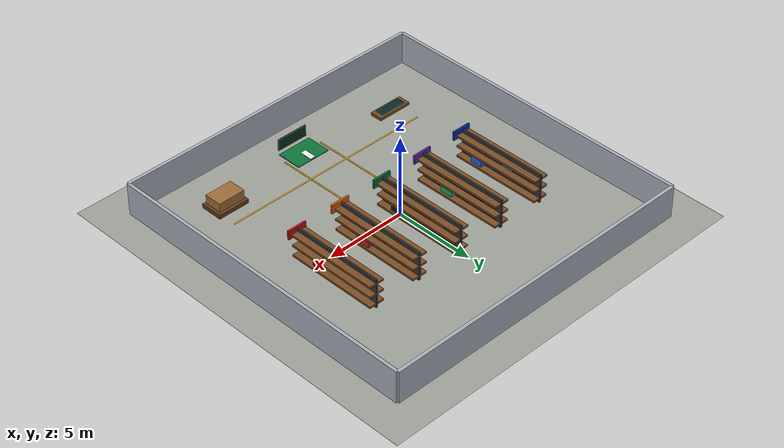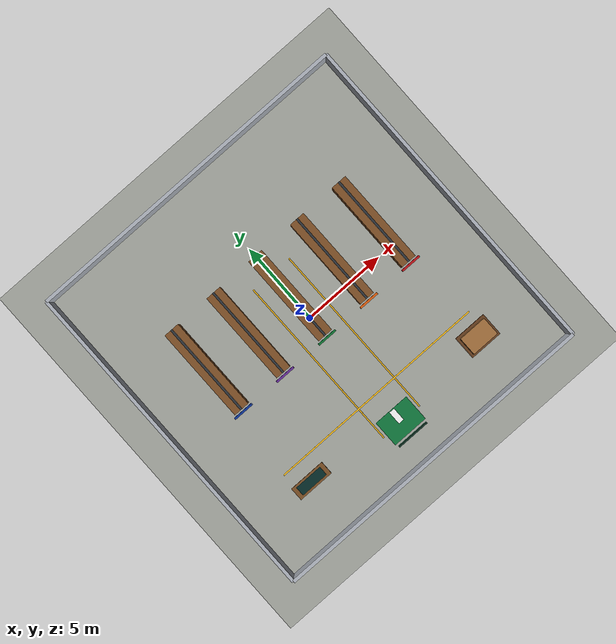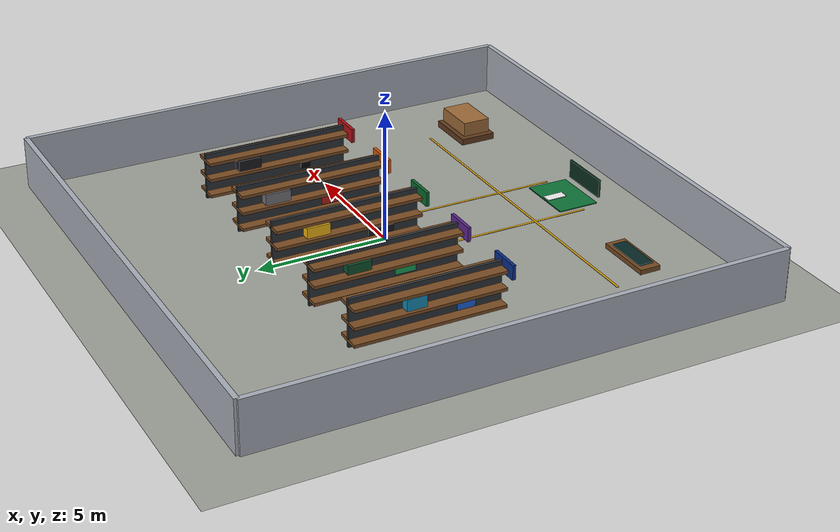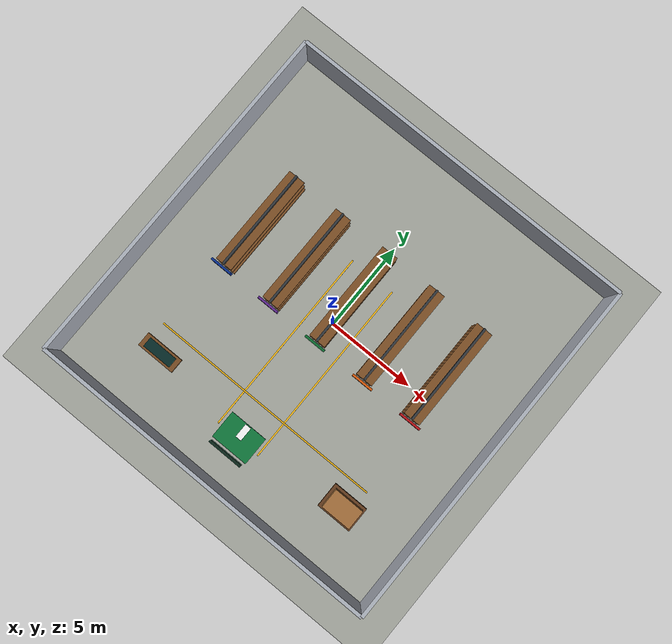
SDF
<?xml version="1.0" ?>
<sdf version="1.8">
  <world name="warehouse_world">

    <physics name="1ms" type="ignored">
      <max_step_size>0.001</max_step_size>
      <real_time_factor>1.0</real_time_factor>
    </physics>

    <plugin filename="gz-sim-physics-system"
            name="gz::sim::systems::Physics"/>
    <plugin filename="gz-sim-user-commands-system"
            name="gz::sim::systems::UserCommands"/>
    <plugin filename="gz-sim-scene-broadcaster-system"
            name="gz::sim::systems::SceneBroadcaster"/>
    <plugin filename="gz-sim-contact-system"
            name="gz::sim::systems::Contact"/>
    <plugin filename="gz-sim-sensors-system"
            name="gz::sim::systems::Sensors">
      <render_engine>ogre2</render_engine>
    </plugin>

    <scene>
      <ambient>0.58 0.58 0.58 1</ambient>
      <background>0.78 0.86 0.94 1</background>
      <shadows>true</shadows>
    </scene>

    <light name="sun" type="directional">
      <cast_shadows>true</cast_shadows>
      <pose>0 0 10 0 0 0</pose>
      <diffuse>1.0 0.96 0.88 1</diffuse>
      <specular>0.3 0.3 0.3 1</specular>
      <direction>-0.4 0.2 -0.9</direction>
    </light>

    <light name="warehouse_overhead_light_1" type="point">
      <pose>-4 0 5.5 0 0 0</pose>
      <diffuse>0.95 0.95 0.9 1</diffuse>
      <specular>0.2 0.2 0.2 1</specular>
      <attenuation>
        <range>13</range>
        <constant>0.5</constant>
        <linear>0.05</linear>
        <quadratic>0.01</quadratic>
      </attenuation>
    </light>

    <light name="warehouse_overhead_light_2" type="point">
      <pose>4 0 5.5 0 0 0</pose>
      <diffuse>0.95 0.95 0.9 1</diffuse>
      <specular>0.2 0.2 0.2 1</specular>
      <attenuation>
        <range>13</range>
        <constant>0.5</constant>
        <linear>0.05</linear>
        <quadratic>0.01</quadratic>
      </attenuation>
    </light>

    <model name="ground_plane">
      <static>true</static>
      <link name="link">
        <collision name="collision">
          <geometry>
            <plane>
              <normal>0 0 1</normal>
              <size>100 100</size>
            </plane>
          </geometry>
        </collision>
        <visual name="warehouse_floor_visual">
          <geometry>
            <plane>
              <normal>0 0 1</normal>
              <size>100 100</size>
            </plane>
          </geometry>
          <material>
            <ambient>0.62 0.63 0.60 1</ambient>
            <diffuse>0.62 0.63 0.60 1</diffuse>
            <specular>0.12 0.12 0.12 1</specular>
          </material>
        </visual>
      </link>
    </model>

    <model name="wall_north">
      <static>true</static>
      <pose>0 10 1 0 0 0</pose>
      <link name="link">
        <collision name="collision">
          <geometry><box><size>20 0.2 2</size></box></geometry>
        </collision>
        <visual name="visual">
          <geometry><box><size>20 0.2 2</size></box></geometry>
          <material>
            <ambient>0.66 0.68 0.72 1</ambient>
            <diffuse>0.66 0.68 0.72 1</diffuse>
            <specular>0.2 0.2 0.2 1</specular>
          </material>
        </visual>
      </link>
    </model>

    <model name="wall_south">
      <static>true</static>
      <pose>0 -10 1 0 0 0</pose>
      <link name="link">
        <collision name="collision">
          <geometry><box><size>20 0.2 2</size></box></geometry>
        </collision>
        <visual name="visual">
          <geometry><box><size>20 0.2 2</size></box></geometry>
          <material>
            <ambient>0.66 0.68 0.72 1</ambient>
            <diffuse>0.66 0.68 0.72 1</diffuse>
            <specular>0.2 0.2 0.2 1</specular>
          </material>
        </visual>
      </link>
    </model>

    <model name="wall_east">
      <static>true</static>
      <pose>10 0 1 0 0 0</pose>
      <link name="link">
        <collision name="collision">
          <geometry><box><size>0.2 20 2</size></box></geometry>
        </collision>
        <visual name="visual">
          <geometry><box><size>0.2 20 2</size></box></geometry>
          <material>
            <ambient>0.66 0.68 0.72 1</ambient>
            <diffuse>0.66 0.68 0.72 1</diffuse>
            <specular>0.2 0.2 0.2 1</specular>
          </material>
        </visual>
      </link>
    </model>

    <model name="wall_west">
      <static>true</static>
      <pose>-10 0 1 0 0 0</pose>
      <link name="link">
        <collision name="collision">
          <geometry><box><size>0.2 20 2</size></box></geometry>
        </collision>
        <visual name="visual">
          <geometry><box><size>0.2 20 2</size></box></geometry>
          <material>
            <ambient>0.66 0.68 0.72 1</ambient>
            <diffuse>0.66 0.68 0.72 1</diffuse>
            <specular>0.2 0.2 0.2 1</specular>
          </material>
        </visual>
      </link>
    </model>

    <model name="robot_home_position_dock">
      <static>true</static>
      <pose>0 -7.5 0.03 0 0 0</pose>
      <link name="link">
        <visual name="green_home_pad">
          <geometry><box><size>2.2 1.6 0.04</size></box></geometry>
          <material>
            <ambient>0.05 0.45 0.22 1</ambient>
            <diffuse>0.05 0.45 0.22 1</diffuse>
            <specular>0.08 0.12 0.08 1</specular>
          </material>
        </visual>
        <visual name="home_heading_arrow">
          <pose>0 0.35 0.04 0 0 0</pose>
          <geometry><box><size>0.35 0.8 0.03</size></box></geometry>
          <material>
            <ambient>0.95 0.95 0.95 1</ambient>
            <diffuse>0.95 0.95 0.95 1</diffuse>
          </material>
        </visual>
        <visual name="home_position_label_board">
          <pose>0 -0.95 0.5 0 0 0</pose>
          <geometry><box><size>2.0 0.08 0.7</size></box></geometry>
          <material>
            <ambient>0.04 0.18 0.12 1</ambient>
            <diffuse>0.04 0.18 0.12 1</diffuse>
          </material>
        </visual>
      </link>
    </model>

    <model name="main_aisle_yellow_lane_markings">
      <static>true</static>
      <link name="link">
        <visual name="left_lane_line">
          <pose>-1.3 -2.2 0.015 0 0 0</pose>
          <geometry><box><size>0.08 10.8 0.02</size></box></geometry>
          <material>
            <ambient>0.95 0.72 0.08 1</ambient>
            <diffuse>0.95 0.72 0.08 1</diffuse>
          </material>
        </visual>
        <visual name="right_lane_line">
          <pose>1.3 -2.2 0.015 0 0 0</pose>
          <geometry><box><size>0.08 10.8 0.02</size></box></geometry>
          <material>
            <ambient>0.95 0.72 0.08 1</ambient>
            <diffuse>0.95 0.72 0.08 1</diffuse>
          </material>
        </visual>
        <visual name="cross_lane_line">
          <pose>0 -5.5 0.016 0 0 0</pose>
          <geometry><box><size>13.5 0.08 0.02</size></box></geometry>
          <material>
            <ambient>0.95 0.72 0.08 1</ambient>
            <diffuse>0.95 0.72 0.08 1</diffuse>
          </material>
        </visual>
      </link>
    </model>

    <model name="sensors_shelf">
      <static>true</static>
      <pose>-6 1.6 0 0 0 0</pose>
      <link name="link">
        <collision name="sensors_shelf_collision">
          <pose>0 0 0.9 0 0 0</pose>
          <geometry><box><size>0.9 5.6 1.8</size></box></geometry>
        </collision>
        <visual name="sensors_shelf_blue_label_board">
          <pose>0 -3.0 1.55 0 0 0</pose>
          <geometry><box><size>1.2 0.12 0.55</size></box></geometry>
          <material><ambient>0.03 0.18 0.55 1</ambient><diffuse>0.03 0.18 0.55 1</diffuse></material>
        </visual>
        <visual name="sensors_shelf_metal_frame">
          <pose>0 0 0.9 0 0 0</pose>
          <geometry><box><size>0.12 5.7 1.8</size></box></geometry>
          <material><ambient>0.18 0.2 0.22 1</ambient><diffuse>0.18 0.2 0.22 1</diffuse></material>
        </visual>
        <visual name="sensors_shelf_bottom_deck">
          <pose>0 0 0.25 0 0 0</pose>
          <geometry><box><size>0.95 5.7 0.12</size></box></geometry>
          <material><ambient>0.48 0.30 0.14 1</ambient><diffuse>0.48 0.30 0.14 1</diffuse></material>
        </visual>
        <visual name="sensors_shelf_middle_deck">
          <pose>0 0 0.9 0 0 0</pose>
          <geometry><box><size>0.95 5.7 0.12</size></box></geometry>
          <material><ambient>0.48 0.30 0.14 1</ambient><diffuse>0.48 0.30 0.14 1</diffuse></material>
        </visual>
        <visual name="sensors_shelf_top_deck">
          <pose>0 0 1.55 0 0 0</pose>
          <geometry><box><size>0.95 5.7 0.12</size></box></geometry>
          <material><ambient>0.48 0.30 0.14 1</ambient><diffuse>0.48 0.30 0.14 1</diffuse></material>
        </visual>
        <visual name="lidar_boxes">
          <pose>0.15 -1.5 0.55 0 0 0</pose>
          <geometry><box><size>0.45 0.7 0.45</size></box></geometry>
          <material><ambient>0.1 0.38 0.85 1</ambient><diffuse>0.1 0.38 0.85 1</diffuse></material>
        </visual>
        <visual name="camera_boxes">
          <pose>-0.15 0.5 1.2 0 0 0</pose>
          <geometry><box><size>0.45 0.75 0.45</size></box></geometry>
          <material><ambient>0.08 0.55 0.72 1</ambient><diffuse>0.08 0.55 0.72 1</diffuse></material>
        </visual>
      </link>
    </model>

    <model name="mcu_shelf">
      <static>true</static>
      <pose>-3 1.6 0 0 0 0</pose>
      <link name="link">
        <collision name="mcu_shelf_collision">
          <pose>0 0 0.9 0 0 0</pose>
          <geometry><box><size>0.9 5.6 1.8</size></box></geometry>
        </collision>
        <visual name="mcu_shelf_purple_label_board">
          <pose>0 -3.0 1.55 0 0 0</pose>
          <geometry><box><size>1.2 0.12 0.55</size></box></geometry>
          <material><ambient>0.36 0.15 0.55 1</ambient><diffuse>0.36 0.15 0.55 1</diffuse></material>
        </visual>
        <visual name="mcu_shelf_metal_frame">
          <pose>0 0 0.9 0 0 0</pose>
          <geometry><box><size>0.12 5.7 1.8</size></box></geometry>
          <material><ambient>0.18 0.2 0.22 1</ambient><diffuse>0.18 0.2 0.22 1</diffuse></material>
        </visual>
        <visual name="mcu_shelf_bottom_deck">
          <pose>0 0 0.25 0 0 0</pose>
          <geometry><box><size>0.95 5.7 0.12</size></box></geometry>
          <material><ambient>0.48 0.30 0.14 1</ambient><diffuse>0.48 0.30 0.14 1</diffuse></material>
        </visual>
        <visual name="mcu_shelf_middle_deck">
          <pose>0 0 0.9 0 0 0</pose>
          <geometry><box><size>0.95 5.7 0.12</size></box></geometry>
          <material><ambient>0.48 0.30 0.14 1</ambient><diffuse>0.48 0.30 0.14 1</diffuse></material>
        </visual>
        <visual name="mcu_shelf_top_deck">
          <pose>0 0 1.55 0 0 0</pose>
          <geometry><box><size>0.95 5.7 0.12</size></box></geometry>
          <material><ambient>0.48 0.30 0.14 1</ambient><diffuse>0.48 0.30 0.14 1</diffuse></material>
        </visual>
        <visual name="arduino_cartons">
          <pose>0.16 -0.8 0.55 0 0 0</pose>
          <geometry><box><size>0.48 0.8 0.35</size></box></geometry>
          <material><ambient>0.1 0.62 0.34 1</ambient><diffuse>0.1 0.62 0.34 1</diffuse></material>
        </visual>
        <visual name="esp32_trays">
          <pose>-0.16 1.1 1.2 0 0 0</pose>
          <geometry><box><size>0.48 0.9 0.35</size></box></geometry>
          <material><ambient>0.05 0.32 0.18 1</ambient><diffuse>0.05 0.32 0.18 1</diffuse></material>
        </visual>
      </link>
    </model>

    <model name="battery_shelf">
      <static>true</static>
      <pose>0 1.6 0 0 0 0</pose>
      <link name="link">
        <collision name="battery_shelf_collision">
          <pose>0 0 0.9 0 0 0</pose>
          <geometry><box><size>0.9 5.6 1.8</size></box></geometry>
        </collision>
        <visual name="battery_shelf_green_label_board">
          <pose>0 -3.0 1.55 0 0 0</pose>
          <geometry><box><size>1.2 0.12 0.55</size></box></geometry>
          <material><ambient>0.04 0.42 0.18 1</ambient><diffuse>0.04 0.42 0.18 1</diffuse></material>
        </visual>
        <visual name="battery_shelf_metal_frame">
          <pose>0 0 0.9 0 0 0</pose>
          <geometry><box><size>0.12 5.7 1.8</size></box></geometry>
          <material><ambient>0.18 0.2 0.22 1</ambient><diffuse>0.18 0.2 0.22 1</diffuse></material>
        </visual>
        <visual name="battery_shelf_bottom_deck">
          <pose>0 0 0.25 0 0 0</pose>
          <geometry><box><size>0.95 5.7 0.12</size></box></geometry>
          <material><ambient>0.48 0.30 0.14 1</ambient><diffuse>0.48 0.30 0.14 1</diffuse></material>
        </visual>
        <visual name="battery_shelf_middle_deck">
          <pose>0 0 0.9 0 0 0</pose>
          <geometry><box><size>0.95 5.7 0.12</size></box></geometry>
          <material><ambient>0.48 0.30 0.14 1</ambient><diffuse>0.48 0.30 0.14 1</diffuse></material>
        </visual>
        <visual name="battery_shelf_top_deck">
          <pose>0 0 1.55 0 0 0</pose>
          <geometry><box><size>0.95 5.7 0.12</size></box></geometry>
          <material><ambient>0.48 0.30 0.14 1</ambient><diffuse>0.48 0.30 0.14 1</diffuse></material>
        </visual>
        <visual name="lipo_battery_cases">
          <pose>0.16 -1.4 0.55 0 0 0</pose>
          <geometry><box><size>0.48 1.0 0.4</size></box></geometry>
          <material><ambient>0.08 0.08 0.08 1</ambient><diffuse>0.08 0.08 0.08 1</diffuse></material>
        </visual>
        <visual name="battery_warning_bins">
          <pose>-0.16 1.2 1.2 0 0 0</pose>
          <geometry><box><size>0.48 0.9 0.4</size></box></geometry>
          <material><ambient>0.95 0.72 0.08 1</ambient><diffuse>0.95 0.72 0.08 1</diffuse></material>
        </visual>
      </link>
    </model>

    <model name="actuator_shelf">
      <static>true</static>
      <pose>3 1.6 0 0 0 0</pose>
      <link name="link">
        <collision name="actuator_shelf_collision">
          <pose>0 0 0.9 0 0 0</pose>
          <geometry><box><size>0.9 5.6 1.8</size></box></geometry>
        </collision>
        <visual name="actuator_shelf_orange_label_board">
          <pose>0 -3.0 1.55 0 0 0</pose>
          <geometry><box><size>1.2 0.12 0.55</size></box></geometry>
          <material><ambient>0.82 0.34 0.04 1</ambient><diffuse>0.82 0.34 0.04 1</diffuse></material>
        </visual>
        <visual name="actuator_shelf_metal_frame">
          <pose>0 0 0.9 0 0 0</pose>
          <geometry><box><size>0.12 5.7 1.8</size></box></geometry>
          <material><ambient>0.18 0.2 0.22 1</ambient><diffuse>0.18 0.2 0.22 1</diffuse></material>
        </visual>
        <visual name="actuator_shelf_bottom_deck">
          <pose>0 0 0.25 0 0 0</pose>
          <geometry><box><size>0.95 5.7 0.12</size></box></geometry>
          <material><ambient>0.48 0.30 0.14 1</ambient><diffuse>0.48 0.30 0.14 1</diffuse></material>
        </visual>
        <visual name="actuator_shelf_middle_deck">
          <pose>0 0 0.9 0 0 0</pose>
          <geometry><box><size>0.95 5.7 0.12</size></box></geometry>
          <material><ambient>0.48 0.30 0.14 1</ambient><diffuse>0.48 0.30 0.14 1</diffuse></material>
        </visual>
        <visual name="actuator_shelf_top_deck">
          <pose>0 0 1.55 0 0 0</pose>
          <geometry><box><size>0.95 5.7 0.12</size></box></geometry>
          <material><ambient>0.48 0.30 0.14 1</ambient><diffuse>0.48 0.30 0.14 1</diffuse></material>
        </visual>
        <visual name="servo_motor_boxes">
          <pose>0.16 -0.9 0.55 0 0 0</pose>
          <geometry><box><size>0.5 0.85 0.42</size></box></geometry>
          <material><ambient>0.72 0.12 0.1 1</ambient><diffuse>0.72 0.12 0.1 1</diffuse></material>
        </visual>
        <visual name="linear_actuator_crates">
          <pose>-0.16 1.4 1.2 0 0 0</pose>
          <geometry><box><size>0.5 1.0 0.42</size></box></geometry>
          <material><ambient>0.45 0.45 0.48 1</ambient><diffuse>0.45 0.45 0.48 1</diffuse></material>
        </visual>
      </link>
    </model>

    <model name="wheels_shelf">
      <static>true</static>
      <pose>6 1.6 0 0 0 0</pose>
      <link name="link">
        <collision name="wheels_shelf_collision">
          <pose>0 0 0.9 0 0 0</pose>
          <geometry><box><size>0.9 5.6 1.8</size></box></geometry>
        </collision>
        <visual name="wheels_shelf_red_label_board">
          <pose>0 -3.0 1.55 0 0 0</pose>
          <geometry><box><size>1.2 0.12 0.55</size></box></geometry>
          <material><ambient>0.70 0.06 0.08 1</ambient><diffuse>0.70 0.06 0.08 1</diffuse></material>
        </visual>
        <visual name="wheels_shelf_metal_frame">
          <pose>0 0 0.9 0 0 0</pose>
          <geometry><box><size>0.12 5.7 1.8</size></box></geometry>
          <material><ambient>0.18 0.2 0.22 1</ambient><diffuse>0.18 0.2 0.22 1</diffuse></material>
        </visual>
        <visual name="wheels_shelf_bottom_deck">
          <pose>0 0 0.25 0 0 0</pose>
          <geometry><box><size>0.95 5.7 0.12</size></box></geometry>
          <material><ambient>0.48 0.30 0.14 1</ambient><diffuse>0.48 0.30 0.14 1</diffuse></material>
        </visual>
        <visual name="wheels_shelf_middle_deck">
          <pose>0 0 0.9 0 0 0</pose>
          <geometry><box><size>0.95 5.7 0.12</size></box></geometry>
          <material><ambient>0.48 0.30 0.14 1</ambient><diffuse>0.48 0.30 0.14 1</diffuse></material>
        </visual>
        <visual name="wheels_shelf_top_deck">
          <pose>0 0 1.55 0 0 0</pose>
          <geometry><box><size>0.95 5.7 0.12</size></box></geometry>
          <material><ambient>0.48 0.30 0.14 1</ambient><diffuse>0.48 0.30 0.14 1</diffuse></material>
        </visual>
        <visual name="rubber_wheel_stack_front">
          <pose>0.16 -1.2 0.55 1.5708 0 0</pose>
          <geometry><cylinder><radius>0.28</radius><length>0.38</length></cylinder></geometry>
          <material><ambient>0.03 0.03 0.03 1</ambient><diffuse>0.03 0.03 0.03 1</diffuse></material>
        </visual>
        <visual name="caster_wheel_bins">
          <pose>-0.16 1.2 1.2 0 0 0</pose>
          <geometry><box><size>0.5 0.9 0.42</size></box></geometry>
          <material><ambient>0.1 0.1 0.12 1</ambient><diffuse>0.1 0.1 0.12 1</diffuse></material>
        </visual>
      </link>
    </model>

    <model name="electronics_packing_table">
      <static>true</static>
      <pose>-5.8 -6.7 0.45 0 0 0</pose>
      <link name="link">
        <collision name="collision">
          <geometry><box><size>2.2 0.8 0.9</size></box></geometry>
        </collision>
        <visual name="table_top">
          <geometry><box><size>2.2 0.8 0.18</size></box></geometry>
          <material><ambient>0.46 0.29 0.13 1</ambient><diffuse>0.46 0.29 0.13 1</diffuse></material>
        </visual>
        <visual name="anti_static_mat">
          <pose>0 0 0.12 0 0 0</pose>
          <geometry><box><size>1.7 0.55 0.04</size></box></geometry>
          <material><ambient>0.02 0.16 0.15 1</ambient><diffuse>0.02 0.16 0.15 1</diffuse></material>
        </visual>
      </link>
    </model>

    <model name="incoming_parts_pallets">
      <static>true</static>
      <pose>6.2 -6.8 0.35 0 0 0</pose>
      <link name="link">
        <collision name="collision">
          <geometry><box><size>2.0 1.4 0.7</size></box></geometry>
        </collision>
        <visual name="pallet_base">
          <geometry><box><size>2.0 1.4 0.25</size></box></geometry>
          <material><ambient>0.38 0.23 0.11 1</ambient><diffuse>0.38 0.23 0.11 1</diffuse></material>
        </visual>
        <visual name="sealed_cartons">
          <pose>0 0 0.45 0 0 0</pose>
          <geometry><box><size>1.7 1.1 0.55</size></box></geometry>
          <material><ambient>0.62 0.42 0.22 1</ambient><diffuse>0.62 0.42 0.22 1</diffuse></material>
        </visual>
      </link>
    </model>

  </world>
</sdf>
